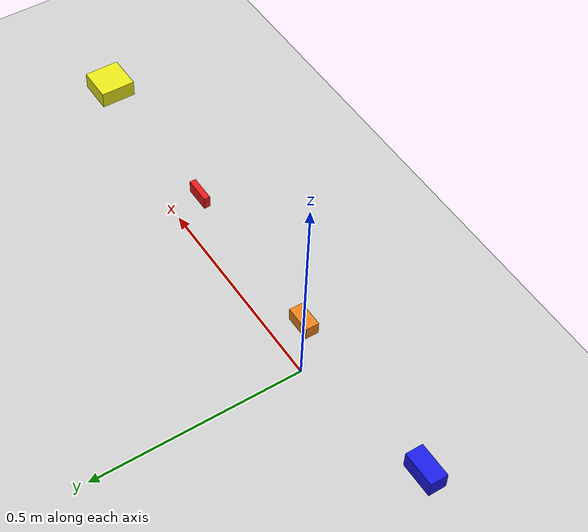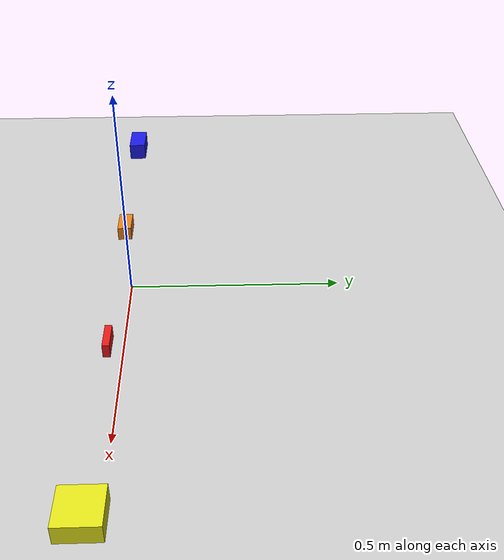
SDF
<?xml version="1.0"?>
<sdf version="1.6">
  <world name="default">
		<scene>
      <ambient>0.9 0.9 0.9 1</ambient>
      <background>0.25 0.25 0.25 1</background>
      <shadows>false</shadows>
    </scene>

    <physics type="dart">
      <real_time_update_rate>0.000000</real_time_update_rate>
    </physics>

    <include>
      <uri>model://ground_plane</uri>
    </include>

    <include>
      <uri>model://sun</uri>
    </include>

    <model name="blue_box">
      <pose>-0.40 0 0.175 0 0 0</pose>
      <link name="link">

        <inertial>
          <mass>0.05</mass>
          <inertia>
            <ixx>0.0083</ixx>
            <ixy>0.0</ixy>
            <ixz>0.0</ixz>
            <iyy>0.0083</iyy>
            <iyz>0.0</iyz>
            <izz>0.0083</izz>
          </inertia>
        </inertial>

        <collision name="box_collision">
          <geometry>
            <box>
              <size>0.077 0.039 0.039</size>
            </box>
          </geometry>
        </collision>

        <visual name="visual">
          <geometry>
            <box>
              <size>0.077 0.039 0.039</size>
            </box>
          </geometry>

				<material> <!-- Wheel material -->
          <ambient>0.1 0.1 0.8 1</ambient>
          <diffuse>0.1 0.1 0.9 1</diffuse>
          <specular>0 0 0 0</specular>
          <emissive>0 0 0 1</emissive>
        </material> <!-- End wheel material -->

        </visual>
      </link>

      <!-- Grasp target plugin -->
      <plugin name="target_plugin" filename="libTargetPlugin.so">
      </plugin>

    </model>

    <model name="orange_box">
      <pose>0.00 0 0.175 0 0 0</pose>
      <link name="link">

        <inertial>
          <mass>0.05</mass>
          <inertia>
            <ixx>0.0083</ixx>
            <ixy>0.0</ixy>
            <ixz>0.0</ixz>
            <iyy>0.0083</iyy>
            <iyz>0.0</iyz>
            <izz>0.0083</izz>
          </inertia>
        </inertial>

        <collision name="box_collision">
          <geometry>
            <box>
              <size>0.060 0.030 0.030</size>
            </box>
          </geometry>
        </collision>

        <visual name="visual">
          <geometry>
            <box>
              <size>0.060 0.030 0.030</size>
            </box>
          </geometry>

				<material> <!-- Wheel material -->
          <ambient>0.9 0.5 0.1 1</ambient>
          <diffuse>0.9 0.5 0.1 1</diffuse>
          <specular>0 0 0 0</specular>
          <emissive>0 0 0 1</emissive>
        </material> <!-- End wheel material -->

        </visual>
      </link>

      <!-- Grasp target plugin -->
      <plugin name="target_plugin" filename="libTargetPlugin.so">
      </plugin>

    </model>

    <model name="red_box">
      <pose>0.40 0 0.175 0 0 0</pose>
      <link name="link">

        <inertial>
          <mass>0.05</mass>
          <inertia>
            <ixx>0.0083</ixx>
            <ixy>0.0</ixy>
            <ixz>0.0</ixz>
            <iyy>0.0083</iyy>
            <iyz>0.0</iyz>
            <izz>0.0083</izz>
          </inertia>
        </inertial>

        <collision name="box_collision">
          <geometry>
            <box>
              <size>0.060 0.014 0.029</size>
            </box>
          </geometry>
        </collision>

        <visual name="visual">
          <geometry>
            <box>
              <size>0.060 0.014 0.029</size>
            </box>
          </geometry>

				<material> <!-- Wheel material -->
          <ambient>0.9 0.1 0.1 1</ambient>
          <diffuse>0.9 0.1 0.1 1</diffuse>
          <specular>0 0 0 0</specular>
          <emissive>0 0 0 1</emissive>
        </material> <!-- End wheel material -->

        </visual>
      </link>

      <!-- Grasp target plugin -->
      <plugin name="target_plugin" filename="libTargetPlugin.so">
      </plugin>

    </model>

    <model name="yellow_box">
      <pose>0.80 0 0.175 0 0 0</pose>
      <link name="link">

        <inertial>
          <mass>0.05</mass>
          <inertia>
            <ixx>0.0083</ixx>
            <ixy>0.0</ixy>
            <ixz>0.0</ixz>
            <iyy>0.0083</iyy>
            <iyz>0.0</iyz>
            <izz>0.0083</izz>
          </inertia>
        </inertial>

        <collision name="box_collision">
          <geometry>
            <box>
              <size>0.080 0.080 0.038</size>
            </box>
          </geometry>
        </collision>

        <visual name="visual">
          <geometry>
            <box>
              <size>0.080 0.080 0.038</size>
            </box>
          </geometry>

				<material> <!-- Wheel material -->
          <ambient>0.9 0.9 0.1 1</ambient>
          <diffuse>0.9 0.9 0.1 1</diffuse>
          <specular>0 0 0 0</specular>
          <emissive>0 0 0 1</emissive>
        </material> <!-- End wheel material -->

        </visual>
      </link>

      <!-- Grasp target plugin -->
      <plugin name="target_plugin" filename="libTargetPlugin.so">
      </plugin>

    </model>

    <!--   <1!-- Grasp target plugin --1> -->

    <!--   <1!-- Grasp target plugin --1> -->

    <!--   <1!-- Grasp target plugin --1> -->

  </world>
</sdf>
